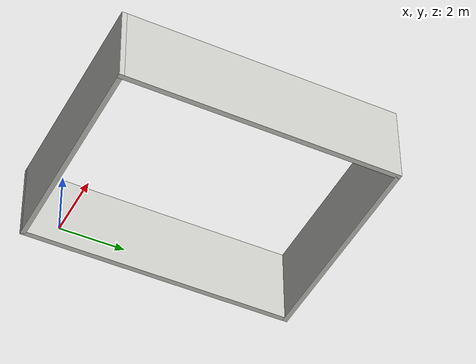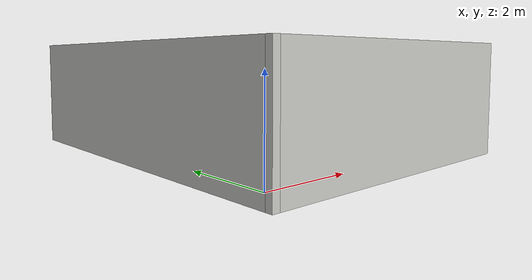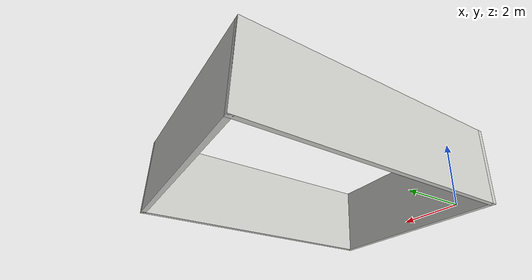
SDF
<?xml version='1.0'?>
<sdf version='1.7'>
  <model name='altered.world'>
    <pose>2.67498 3.33212 0 0 -0 0</pose>
    <link name='Wall_10'>
      <collision name='Wall_10_Collision'>
        <geometry>
          <box>
            <size>8.5 0.15 2.5</size>
          </box>
        </geometry>
        <pose>0 0 1.25 0 -0 0</pose>
      </collision>
      <visual name='Wall_10_Visual'>
        <pose>0 0 1.25 0 -0 0</pose>
        <geometry>
          <box>
            <size>8.5 0.15 2.5</size>
          </box>
        </geometry>
        <material>
          <script>
            <uri>file://media/materials/scripts/gazebo.material</uri>
            <name>Gazebo/CeilingTiled</name>
          </script>
          <ambient>1 1 1 1</ambient>
        </material>
        <meta>
          <layer>0</layer>
        </meta>
      </visual>
      <pose>-3.3 0 0 0 -0 1.5708</pose>
    </link>
    <link name='Wall_11'>
      <collision name='Wall_11_Collision'>
        <geometry>
          <box>
            <size>6.75 0.15 2.5</size>
          </box>
        </geometry>
        <pose>0 0 1.25 0 -0 0</pose>
      </collision>
      <visual name='Wall_11_Visual'>
        <pose>0 0 1.25 0 -0 0</pose>
        <geometry>
          <box>
            <size>6.75 0.15 2.5</size>
          </box>
        </geometry>
        <material>
          <script>
            <uri>file://media/materials/scripts/gazebo.material</uri>
            <name>Gazebo/CeilingTiled</name>
          </script>
          <ambient>1 1 1 1</ambient>
        </material>
        <meta>
          <layer>0</layer>
        </meta>
      </visual>
      <pose>0 4.175 0 0 -0 0</pose>
    </link>
    <link name='Wall_8'>
      <collision name='Wall_8_Collision'>
        <geometry>
          <box>
            <size>8.5 0.15 2.5</size>
          </box>
        </geometry>
        <pose>0 0 1.25 0 -0 0</pose>
      </collision>
      <visual name='Wall_8_Visual'>
        <pose>0 0 1.25 0 -0 0</pose>
        <geometry>
          <box>
            <size>8.5 0.15 2.5</size>
          </box>
        </geometry>
        <material>
          <script>
            <uri>file://media/materials/scripts/gazebo.material</uri>
            <name>Gazebo/CeilingTiled</name>
          </script>
          <ambient>1 1 1 1</ambient>
        </material>
        <meta>
          <layer>0</layer>
        </meta>
      </visual>
      <pose>3.3 0 0 0 -0 -1.5708</pose>
    </link>
    <link name='Wall_9'>
      <collision name='Wall_9_Collision'>
        <geometry>
          <box>
            <size>6.75 0.15 2.5</size>
          </box>
        </geometry>
        <pose>0 0 1.25 0 -0 0</pose>
      </collision>
      <visual name='Wall_9_Visual'>
        <pose>0 0 1.25 0 -0 0</pose>
        <geometry>
          <box>
            <size>6.75 0.15 2.5</size>
          </box>
        </geometry>
        <material>
          <script>
            <uri>file://media/materials/scripts/gazebo.material</uri>
            <name>Gazebo/CeilingTiled</name>
          </script>
          <ambient>1 1 1 1</ambient>
        </material>
        <meta>
          <layer>0</layer>
        </meta>
      </visual>
      <pose>0 -4.175 0 0 -0 3.14159</pose>
    </link>
    <static>1</static>
  </model>
</sdf>
